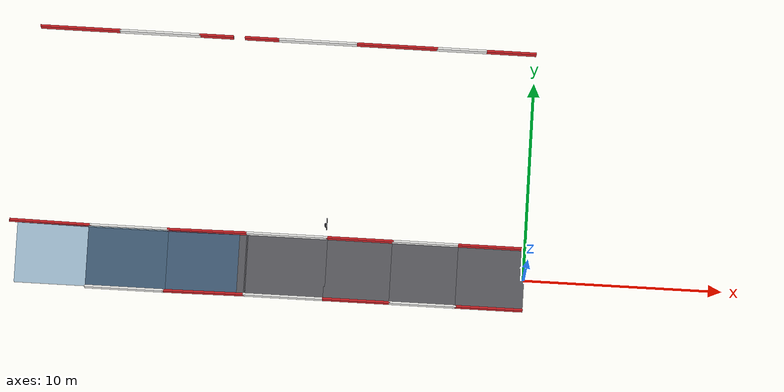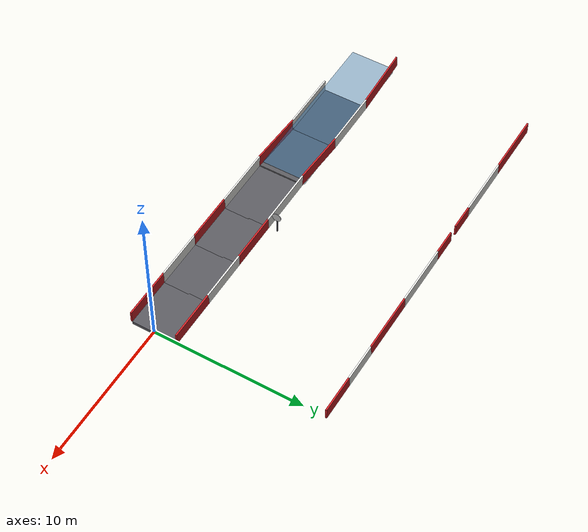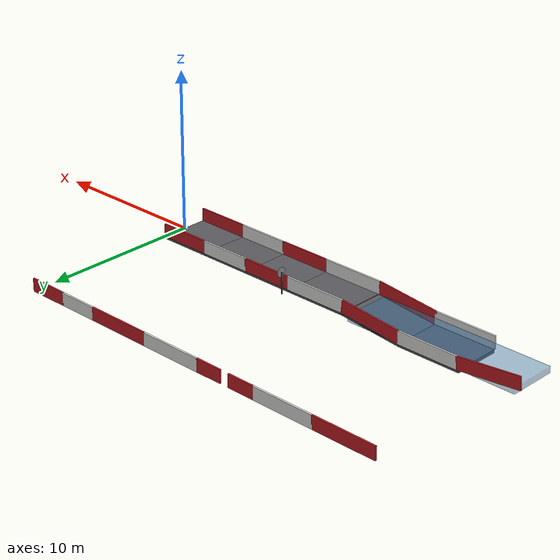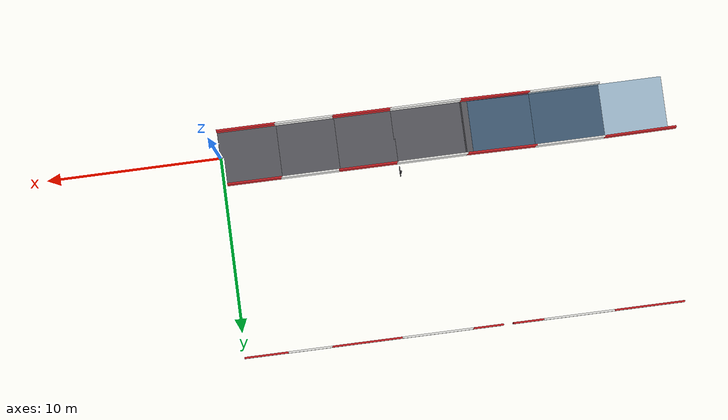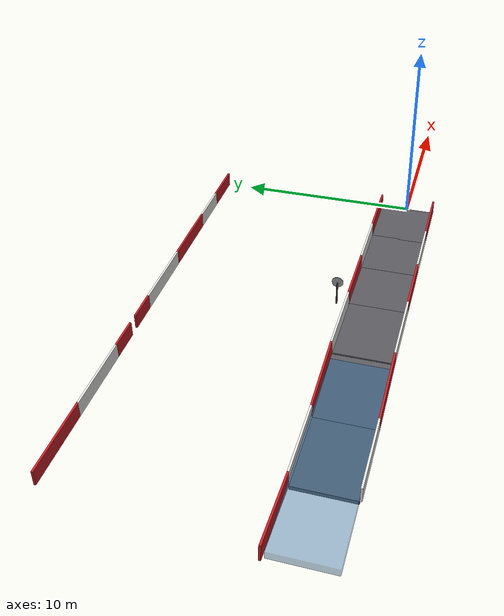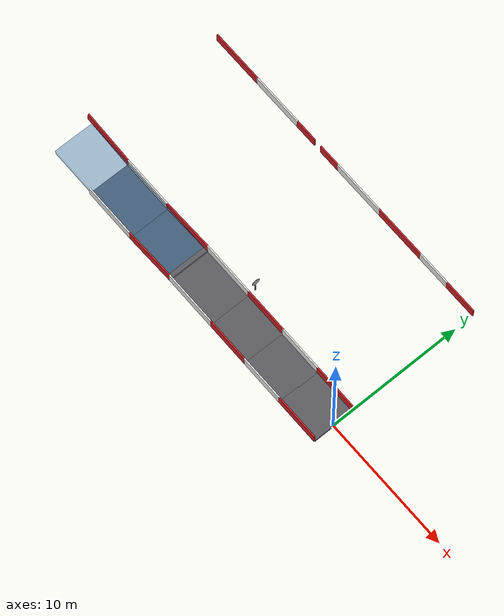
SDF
<sdf version="1.10">
 <world name="ika_parkur">
  <model name="parkur_road">
   <static>true</static>
   <link name="road_0000">
    <pose>-1.666667 0 -0.1 0 0 3.141593</pose>
    <collision name="road_0000_col">
     <geometry><box><size>3.4 3 0.2</size></box></geometry>
     <surface>
      <friction><ode><mu>1</mu><mu2>1</mu2></ode></friction>
      <contact><ode><kp>1000000</kp><kd>1</kd></ode></contact>
     </surface>
    </collision>
    <visual name="road_0000_vis">
     <geometry><box><size>3.4 3 0.2</size></box></geometry>
     <material>
      <ambient>0.35 0.35 0.37 1</ambient>
      <diffuse>0.35 0.35 0.37 1</diffuse>
      <specular>0.1 0.1 0.1 1</specular>
     </material>
    </visual>
   </link>
   <link name="road_0001">
    <pose>-5 0 -0.1 0 0 3.141593</pose>
    <collision name="road_0001_col">
     <geometry><box><size>3.4 3 0.2</size></box></geometry>
     <surface>
      <friction><ode><mu>1</mu><mu2>1</mu2></ode></friction>
      <contact><ode><kp>1000000</kp><kd>1</kd></ode></contact>
     </surface>
    </collision>
    <visual name="road_0001_vis">
     <geometry><box><size>3.4 3 0.2</size></box></geometry>
     <material>
      <ambient>0.35 0.35 0.37 1</ambient>
      <diffuse>0.35 0.35 0.37 1</diffuse>
      <specular>0.1 0.1 0.1 1</specular>
     </material>
    </visual>
   </link>
   <link name="road_0002">
    <pose>-8.333333 0 -0.1 0 0 3.141593</pose>
    <collision name="road_0002_col">
     <geometry><box><size>3.4 3 0.2</size></box></geometry>
     <surface>
      <friction><ode><mu>1</mu><mu2>1</mu2></ode></friction>
      <contact><ode><kp>1000000</kp><kd>1</kd></ode></contact>
     </surface>
    </collision>
    <visual name="road_0002_vis">
     <geometry><box><size>3.4 3 0.2</size></box></geometry>
     <material>
      <ambient>0.35 0.35 0.37 1</ambient>
      <diffuse>0.35 0.35 0.37 1</diffuse>
      <specular>0.1 0.1 0.1 1</specular>
     </material>
    </visual>
   </link>
   <link name="road_0003">
    <pose>-12 0 -0.1 0 0 3.141593</pose>
    <collision name="road_0003_col">
     <geometry><box><size>4.08 3 0.2</size></box></geometry>
     <surface>
      <friction><ode><mu>1</mu><mu2>1</mu2></ode></friction>
      <contact><ode><kp>1000000</kp><kd>1</kd></ode></contact>
     </surface>
    </collision>
    <visual name="road_0003_vis">
     <geometry><box><size>4.08 3 0.2</size></box></geometry>
     <material>
      <ambient>0.35 0.35 0.37 1</ambient>
      <diffuse>0.35 0.35 0.37 1</diffuse>
      <specular>0.1 0.1 0.1 1</specular>
     </material>
    </visual>
   </link>
   <link name="road_0004">
    <pose>-15.99005 0 -0.299504 0 0.099669 3.141593</pose>
    <collision name="road_0004_col">
     <geometry><box><size>4.100349 3 0.2</size></box></geometry>
     <surface>
      <friction><ode><mu>1</mu><mu2>1</mu2></ode></friction>
      <contact><ode><kp>1000000</kp><kd>1</kd></ode></contact>
     </surface>
    </collision>
    <visual name="road_0004_vis">
     <geometry><box><size>4.100349 3 0.2</size></box></geometry>
     <material>
      <ambient>0.35 0.35 0.37 1</ambient>
      <diffuse>0.35 0.35 0.37 1</diffuse>
      <specular>0.1 0.1 0.1 1</specular>
     </material>
    </visual>
   </link>
   <link name="road_0005">
    <pose>-20 0 -0.5 0 0 3.141593</pose>
    <collision name="road_0005_col">
     <geometry><box><size>4.08 3 0.2</size></box></geometry>
     <surface>
      <friction><ode><mu>1</mu><mu2>1</mu2></ode></friction>
      <contact><ode><kp>1000000</kp><kd>1</kd></ode></contact>
     </surface>
    </collision>
    <visual name="road_0005_vis">
     <geometry><box><size>4.08 3 0.2</size></box></geometry>
     <material>
      <ambient>0.35 0.35 0.37 1</ambient>
      <diffuse>0.35 0.35 0.37 1</diffuse>
      <specular>0.1 0.1 0.1 1</specular>
     </material>
    </visual>
   </link>
  </model>
  <model name="parkur_barriers">
   <static>true</static>
   <link name="barrier_l_0000">
    <pose>-1.666667 -1.55 0.4 0 0 3.141593</pose>
    <collision name="barrier_l_0000_col">
     <geometry><box><size>3.4 0.1 0.8</size></box></geometry>
     <surface>
      <friction><ode><mu>0.6</mu><mu2>0.6</mu2></ode></friction>
      <contact><ode><kp>1000000</kp><kd>1</kd></ode></contact>
     </surface>
    </collision>
    <visual name="barrier_l_0000_vis">
     <geometry><box><size>3.4 0.1 0.8</size></box></geometry>
     <material>
      <ambient>0.81 0.13 0.15 1</ambient>
      <diffuse>0.81 0.13 0.15 1</diffuse>
      <specular>0.1 0.1 0.1 1</specular>
     </material>
    </visual>
   </link>
   <link name="barrier_r_0000">
    <pose>-1.666667 1.55 0.4 0 0 3.141593</pose>
    <collision name="barrier_r_0000_col">
     <geometry><box><size>3.4 0.1 0.8</size></box></geometry>
     <surface>
      <friction><ode><mu>0.6</mu><mu2>0.6</mu2></ode></friction>
      <contact><ode><kp>1000000</kp><kd>1</kd></ode></contact>
     </surface>
    </collision>
    <visual name="barrier_r_0000_vis">
     <geometry><box><size>3.4 0.1 0.8</size></box></geometry>
     <material>
      <ambient>0.81 0.13 0.15 1</ambient>
      <diffuse>0.81 0.13 0.15 1</diffuse>
      <specular>0.1 0.1 0.1 1</specular>
     </material>
    </visual>
   </link>
   <link name="barrier_l_0001">
    <pose>-5 -1.55 0.4 0 0 3.141593</pose>
    <collision name="barrier_l_0001_col">
     <geometry><box><size>3.4 0.1 0.8</size></box></geometry>
     <surface>
      <friction><ode><mu>0.6</mu><mu2>0.6</mu2></ode></friction>
      <contact><ode><kp>1000000</kp><kd>1</kd></ode></contact>
     </surface>
    </collision>
    <visual name="barrier_l_0001_vis">
     <geometry><box><size>3.4 0.1 0.8</size></box></geometry>
     <material>
      <ambient>0.93 0.93 0.92 1</ambient>
      <diffuse>0.93 0.93 0.92 1</diffuse>
      <specular>0.1 0.1 0.1 1</specular>
     </material>
    </visual>
   </link>
   <link name="barrier_r_0001">
    <pose>-5 1.55 0.4 0 0 3.141593</pose>
    <collision name="barrier_r_0001_col">
     <geometry><box><size>3.4 0.1 0.8</size></box></geometry>
     <surface>
      <friction><ode><mu>0.6</mu><mu2>0.6</mu2></ode></friction>
      <contact><ode><kp>1000000</kp><kd>1</kd></ode></contact>
     </surface>
    </collision>
    <visual name="barrier_r_0001_vis">
     <geometry><box><size>3.4 0.1 0.8</size></box></geometry>
     <material>
      <ambient>0.93 0.93 0.92 1</ambient>
      <diffuse>0.93 0.93 0.92 1</diffuse>
      <specular>0.1 0.1 0.1 1</specular>
     </material>
    </visual>
   </link>
   <link name="barrier_l_0002">
    <pose>-8.333333 -1.55 0.4 0 0 3.141593</pose>
    <collision name="barrier_l_0002_col">
     <geometry><box><size>3.4 0.1 0.8</size></box></geometry>
     <surface>
      <friction><ode><mu>0.6</mu><mu2>0.6</mu2></ode></friction>
      <contact><ode><kp>1000000</kp><kd>1</kd></ode></contact>
     </surface>
    </collision>
    <visual name="barrier_l_0002_vis">
     <geometry><box><size>3.4 0.1 0.8</size></box></geometry>
     <material>
      <ambient>0.81 0.13 0.15 1</ambient>
      <diffuse>0.81 0.13 0.15 1</diffuse>
      <specular>0.1 0.1 0.1 1</specular>
     </material>
    </visual>
   </link>
   <link name="barrier_r_0002">
    <pose>-8.333333 1.55 0.4 0 0 3.141593</pose>
    <collision name="barrier_r_0002_col">
     <geometry><box><size>3.4 0.1 0.8</size></box></geometry>
     <surface>
      <friction><ode><mu>0.6</mu><mu2>0.6</mu2></ode></friction>
      <contact><ode><kp>1000000</kp><kd>1</kd></ode></contact>
     </surface>
    </collision>
    <visual name="barrier_r_0002_vis">
     <geometry><box><size>3.4 0.1 0.8</size></box></geometry>
     <material>
      <ambient>0.81 0.13 0.15 1</ambient>
      <diffuse>0.81 0.13 0.15 1</diffuse>
      <specular>0.1 0.1 0.1 1</specular>
     </material>
    </visual>
   </link>
   <link name="barrier_l_0003">
    <pose>-12 -1.55 0.4 0 0 3.141593</pose>
    <collision name="barrier_l_0003_col">
     <geometry><box><size>4.08 0.1 0.8</size></box></geometry>
     <surface>
      <friction><ode><mu>0.6</mu><mu2>0.6</mu2></ode></friction>
      <contact><ode><kp>1000000</kp><kd>1</kd></ode></contact>
     </surface>
    </collision>
    <visual name="barrier_l_0003_vis">
     <geometry><box><size>4.08 0.1 0.8</size></box></geometry>
     <material>
      <ambient>0.93 0.93 0.92 1</ambient>
      <diffuse>0.93 0.93 0.92 1</diffuse>
      <specular>0.1 0.1 0.1 1</specular>
     </material>
    </visual>
   </link>
   <link name="barrier_r_0003">
    <pose>-12 1.55 0.4 0 0 3.141593</pose>
    <collision name="barrier_r_0003_col">
     <geometry><box><size>4.08 0.1 0.8</size></box></geometry>
     <surface>
      <friction><ode><mu>0.6</mu><mu2>0.6</mu2></ode></friction>
      <contact><ode><kp>1000000</kp><kd>1</kd></ode></contact>
     </surface>
    </collision>
    <visual name="barrier_r_0003_vis">
     <geometry><box><size>4.08 0.1 0.8</size></box></geometry>
     <material>
      <ambient>0.93 0.93 0.92 1</ambient>
      <diffuse>0.93 0.93 0.92 1</diffuse>
      <specular>0.1 0.1 0.1 1</specular>
     </material>
    </visual>
   </link>
   <link name="barrier_l_0004">
    <pose>-16.039801 -1.55 0.198015 0 0.099669 3.141593</pose>
    <collision name="barrier_l_0004_col">
     <geometry><box><size>4.100349 0.1 0.8</size></box></geometry>
     <surface>
      <friction><ode><mu>0.6</mu><mu2>0.6</mu2></ode></friction>
      <contact><ode><kp>1000000</kp><kd>1</kd></ode></contact>
     </surface>
    </collision>
    <visual name="barrier_l_0004_vis">
     <geometry><box><size>4.100349 0.1 0.8</size></box></geometry>
     <material>
      <ambient>0.81 0.13 0.15 1</ambient>
      <diffuse>0.81 0.13 0.15 1</diffuse>
      <specular>0.1 0.1 0.1 1</specular>
     </material>
    </visual>
   </link>
   <link name="barrier_r_0004">
    <pose>-16.039801 1.55 0.198015 0 0.099669 3.141593</pose>
    <collision name="barrier_r_0004_col">
     <geometry><box><size>4.100349 0.1 0.8</size></box></geometry>
     <surface>
      <friction><ode><mu>0.6</mu><mu2>0.6</mu2></ode></friction>
      <contact><ode><kp>1000000</kp><kd>1</kd></ode></contact>
     </surface>
    </collision>
    <visual name="barrier_r_0004_vis">
     <geometry><box><size>4.100349 0.1 0.8</size></box></geometry>
     <material>
      <ambient>0.81 0.13 0.15 1</ambient>
      <diffuse>0.81 0.13 0.15 1</diffuse>
      <specular>0.1 0.1 0.1 1</specular>
     </material>
    </visual>
   </link>
   <link name="barrier_l_0005">
    <pose>-20 -1.55 0 0 0 3.141593</pose>
    <collision name="barrier_l_0005_col">
     <geometry><box><size>4.08 0.1 0.8</size></box></geometry>
     <surface>
      <friction><ode><mu>0.6</mu><mu2>0.6</mu2></ode></friction>
      <contact><ode><kp>1000000</kp><kd>1</kd></ode></contact>
     </surface>
    </collision>
    <visual name="barrier_l_0005_vis">
     <geometry><box><size>4.08 0.1 0.8</size></box></geometry>
     <material>
      <ambient>0.93 0.93 0.92 1</ambient>
      <diffuse>0.93 0.93 0.92 1</diffuse>
      <specular>0.1 0.1 0.1 1</specular>
     </material>
    </visual>
   </link>
   <link name="barrier_r_0005">
    <pose>-20 1.55 0 0 0 3.141593</pose>
    <collision name="barrier_r_0005_col">
     <geometry><box><size>4.08 0.1 0.8</size></box></geometry>
     <surface>
      <friction><ode><mu>0.6</mu><mu2>0.6</mu2></ode></friction>
      <contact><ode><kp>1000000</kp><kd>1</kd></ode></contact>
     </surface>
    </collision>
    <visual name="barrier_r_0005_vis">
     <geometry><box><size>4.08 0.1 0.8</size></box></geometry>
     <material>
      <ambient>0.93 0.93 0.92 1</ambient>
      <diffuse>0.93 0.93 0.92 1</diffuse>
      <specular>0.1 0.1 0.1 1</specular>
     </material>
    </visual>
   </link>
   <link name="barrier_r_0006">
    <pose>-23.960199 1.55 0.198015 0 -0.099669 3.141593</pose>
    <collision name="barrier_r_0006_col">
     <geometry><box><size>4.100349 0.1 0.8</size></box></geometry>
     <surface>
      <friction><ode><mu>0.6</mu><mu2>0.6</mu2></ode></friction>
      <contact><ode><kp>1000000</kp><kd>1</kd></ode></contact>
     </surface>
    </collision>
    <visual name="barrier_r_0006_vis">
     <geometry><box><size>4.100349 0.1 0.8</size></box></geometry>
     <material>
      <ambient>0.81 0.13 0.15 1</ambient>
      <diffuse>0.81 0.13 0.15 1</diffuse>
      <specular>0.1 0.1 0.1 1</specular>
     </material>
    </visual>
   </link>
   <link name="barrier_r_0112">
    <pose>-23 11.45 0.4 0 0 0</pose>
    <collision name="barrier_r_0112_col">
     <geometry><box><size>4.08 0.1 0.8</size></box></geometry>
     <surface>
      <friction><ode><mu>0.6</mu><mu2>0.6</mu2></ode></friction>
      <contact><ode><kp>1000000</kp><kd>1</kd></ode></contact>
     </surface>
    </collision>
    <visual name="barrier_r_0112_vis">
     <geometry><box><size>4.08 0.1 0.8</size></box></geometry>
     <material>
      <ambient>0.81 0.13 0.15 1</ambient>
      <diffuse>0.81 0.13 0.15 1</diffuse>
      <specular>0.1 0.1 0.1 1</specular>
     </material>
    </visual>
   </link>
   <link name="barrier_r_0113">
    <pose>-19 11.45 0.4 0 0 0</pose>
    <collision name="barrier_r_0113_col">
     <geometry><box><size>4.08 0.1 0.8</size></box></geometry>
     <surface>
      <friction><ode><mu>0.6</mu><mu2>0.6</mu2></ode></friction>
      <contact><ode><kp>1000000</kp><kd>1</kd></ode></contact>
     </surface>
    </collision>
    <visual name="barrier_r_0113_vis">
     <geometry><box><size>4.08 0.1 0.8</size></box></geometry>
     <material>
      <ambient>0.93 0.93 0.92 1</ambient>
      <diffuse>0.93 0.93 0.92 1</diffuse>
      <specular>0.1 0.1 0.1 1</specular>
     </material>
    </visual>
   </link>
   <link name="barrier_r_0114">
    <pose>-16.15 11.45 0.4 0 0 0</pose>
    <collision name="barrier_r_0114_col">
     <geometry><box><size>1.734 0.1 0.8</size></box></geometry>
     <surface>
      <friction><ode><mu>0.6</mu><mu2>0.6</mu2></ode></friction>
      <contact><ode><kp>1000000</kp><kd>1</kd></ode></contact>
     </surface>
    </collision>
    <visual name="barrier_r_0114_vis">
     <geometry><box><size>1.734 0.1 0.8</size></box></geometry>
     <material>
      <ambient>0.81 0.13 0.15 1</ambient>
      <diffuse>0.81 0.13 0.15 1</diffuse>
      <specular>0.1 0.1 0.1 1</specular>
     </material>
    </visual>
   </link>
   <link name="barrier_r_0116">
    <pose>-13.85 11.45 0.4 0 0 0</pose>
    <collision name="barrier_r_0116_col">
     <geometry><box><size>1.734 0.1 0.8</size></box></geometry>
     <surface>
      <friction><ode><mu>0.6</mu><mu2>0.6</mu2></ode></friction>
      <contact><ode><kp>1000000</kp><kd>1</kd></ode></contact>
     </surface>
    </collision>
    <visual name="barrier_r_0116_vis">
     <geometry><box><size>1.734 0.1 0.8</size></box></geometry>
     <material>
      <ambient>0.81 0.13 0.15 1</ambient>
      <diffuse>0.81 0.13 0.15 1</diffuse>
      <specular>0.1 0.1 0.1 1</specular>
     </material>
    </visual>
   </link>
   <link name="barrier_r_0117">
    <pose>-11 11.45 0.4 0 0 0</pose>
    <collision name="barrier_r_0117_col">
     <geometry><box><size>4.08 0.1 0.8</size></box></geometry>
     <surface>
      <friction><ode><mu>0.6</mu><mu2>0.6</mu2></ode></friction>
      <contact><ode><kp>1000000</kp><kd>1</kd></ode></contact>
     </surface>
    </collision>
    <visual name="barrier_r_0117_vis">
     <geometry><box><size>4.08 0.1 0.8</size></box></geometry>
     <material>
      <ambient>0.93 0.93 0.92 1</ambient>
      <diffuse>0.93 0.93 0.92 1</diffuse>
      <specular>0.1 0.1 0.1 1</specular>
     </material>
    </visual>
   </link>
   <link name="barrier_r_0118">
    <pose>-7 11.45 0.4 0 0 0</pose>
    <collision name="barrier_r_0118_col">
     <geometry><box><size>4.08 0.1 0.8</size></box></geometry>
     <surface>
      <friction><ode><mu>0.6</mu><mu2>0.6</mu2></ode></friction>
      <contact><ode><kp>1000000</kp><kd>1</kd></ode></contact>
     </surface>
    </collision>
    <visual name="barrier_r_0118_vis">
     <geometry><box><size>4.08 0.1 0.8</size></box></geometry>
     <material>
      <ambient>0.81 0.13 0.15 1</ambient>
      <diffuse>0.81 0.13 0.15 1</diffuse>
      <specular>0.1 0.1 0.1 1</specular>
     </material>
    </visual>
   </link>
   <link name="barrier_r_0119">
    <pose>-3.75 11.45 0.4 0 0 0</pose>
    <collision name="barrier_r_0119_col">
     <geometry><box><size>2.55 0.1 0.8</size></box></geometry>
     <surface>
      <friction><ode><mu>0.6</mu><mu2>0.6</mu2></ode></friction>
      <contact><ode><kp>1000000</kp><kd>1</kd></ode></contact>
     </surface>
    </collision>
    <visual name="barrier_r_0119_vis">
     <geometry><box><size>2.55 0.1 0.8</size></box></geometry>
     <material>
      <ambient>0.93 0.93 0.92 1</ambient>
      <diffuse>0.93 0.93 0.92 1</diffuse>
      <specular>0.1 0.1 0.1 1</specular>
     </material>
    </visual>
   </link>
   <link name="barrier_r_0120">
    <pose>-1.25 11.45 0.4 0 0 0</pose>
    <collision name="barrier_r_0120_col">
     <geometry><box><size>2.55 0.1 0.8</size></box></geometry>
     <surface>
      <friction><ode><mu>0.6</mu><mu2>0.6</mu2></ode></friction>
      <contact><ode><kp>1000000</kp><kd>1</kd></ode></contact>
     </surface>
    </collision>
    <visual name="barrier_r_0120_vis">
     <geometry><box><size>2.55 0.1 0.8</size></box></geometry>
     <material>
      <ambient>0.81 0.13 0.15 1</ambient>
      <diffuse>0.81 0.13 0.15 1</diffuse>
      <specular>0.1 0.1 0.1 1</specular>
     </material>
    </visual>
   </link>
  </model>
  <model name="su_havuzu">
   <static>true</static>
   <pose>-20 0 -0.2 0 0 3.141593</pose>
   <link name="water_link">
    <visual name="water_vis">
     <geometry><box><size>11.22 3 0.4</size></box></geometry>
     <transparency>0.55</transparency>
     <material>
      <ambient>0.18 0.42 0.62 0.55</ambient>
      <diffuse>0.18 0.42 0.62 0.55</diffuse>
      <specular>0.1 0.1 0.1 1</specular>
     </material>
    </visual>
   </link>
  </model>
  <model name="tabela_direk_01">
   <static>true</static>
   <pose>-10.085 2.15 -0.02 0 0 3.141593</pose>
   <link name="post01">
    <collision name="post01_col">
     <pose>0 0 0.66 0 0 0</pose>
     <geometry><cylinder><radius>0.045</radius><length>1.32</length></cylinder></geometry>
     <surface>
      <friction><ode><mu>0.6</mu><mu2>0.6</mu2></ode></friction>
      <contact><ode><kp>1000000</kp><kd>1</kd></ode></contact>
     </surface>
    </collision>
    <visual name="post01_vis">
     <pose>0 0 0.66 0 0 0</pose>
     <geometry><cylinder><radius>0.045</radius><length>1.32</length></cylinder></geometry>
     <material>
      <ambient>0.22 0.22 0.24 1</ambient>
      <diffuse>0.22 0.22 0.24 1</diffuse>
      <specular>0.1 0.1 0.1 1</specular>
     </material>
    </visual>
   </link>
  </model>
  <model name="tabela_01">
   <static>true</static>
   <pose>-10 2.15 1.3 0 0 7.853982</pose>
   <link name="tabela_01_link">
    <visual name="tabela_01_face">
     <geometry><mesh><uri>model://ika_isaretler/meshes/stage_01.obj</uri></mesh></geometry>
    </visual>
    <collision name="tabela_01_col">
     <pose>0 0.019 0 1.570796 0 0</pose>
     <geometry><cylinder><radius>0.3</radius><length>0.03</length></cylinder></geometry>
     <surface>
      <friction><ode><mu>0.6</mu><mu2>0.6</mu2></ode></friction>
      <contact><ode><kp>1000000</kp><kd>1</kd></ode></contact>
     </surface>
    </collision>
    <visual name="tabela_01_back">
     <pose>0 0.019 0 1.570796 0 0</pose>
     <geometry><cylinder><radius>0.3</radius><length>0.03</length></cylinder></geometry>
     <material>
      <ambient>0.62 0.62 0.64 1</ambient>
      <diffuse>0.62 0.62 0.64 1</diffuse>
      <specular>0.1 0.1 0.1 1</specular>
     </material>
    </visual>
   </link>
  </model>
 </world>
</sdf>
